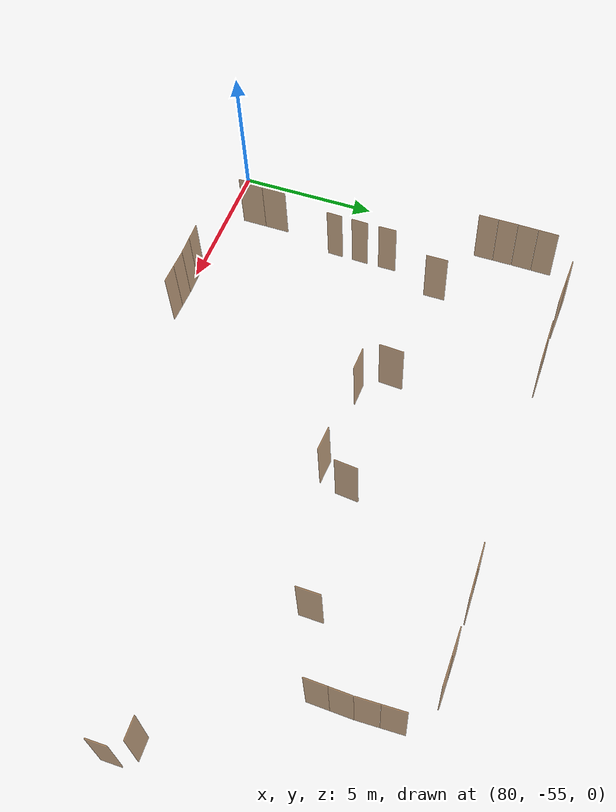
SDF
<sdf version="1.7">
 <world name="sim_world">
  <model name="door_25">
   <pose>82.69628751742377 -42.04046405408661 0.0 0 0 3.111119810310376</pose>
   <link name="right">
    <pose>0.454529137180095 0 1.11 0 0 0</pose>
    <visual name="right_visual">
     <geometry><box><size>0.89905827436019 0.03 2.2</size></box></geometry>
     <material>
      <ambient>0.5 0.25 0 0.6</ambient>
      <diffuse>0.5 0.25 0 0.6</diffuse>
      <pbr><metal><metalness>0.0</metalness></metal></pbr>
     </material>
    </visual>
    <collision name="right_collision">
     <geometry><box><size>0.89905827436019 0.03 2.2</size></box></geometry>
     <surface><contact><collide_bitmask>0x02</collide_bitmask></contact></surface>
    </collision>
    <inertial>
     <mass>50.0</mass>
     <inertia><ixx>20.17041666666667</ixx><iyy>23.53460741956468</iyy><izz>3.3716907528980116</izz></inertia>
    </inertial>
   </link>
   <joint name="right_joint" type="revolute">
    <parent>world</parent>
    <child>right</child>
    <axis><xyz>0 0 1</xyz><limit><lower>0</lower><upper>1.57</upper></limit></axis>
    <pose>0.454529137180095 0 0 0 0 0</pose>
   </joint>
   <link name="left">
    <pose>-0.454529137180095 0 1.11 0 0 0</pose>
    <visual name="left_visual">
     <geometry><box><size>0.89905827436019 0.03 2.2</size></box></geometry>
     <material>
      <ambient>0.5 0.25 0 0.6</ambient>
      <diffuse>0.5 0.25 0 0.6</diffuse>
      <pbr><metal><metalness>0.0</metalness></metal></pbr>
     </material>
    </visual>
    <collision name="left_collision">
     <geometry><box><size>0.89905827436019 0.03 2.2</size></box></geometry>
     <surface><contact><collide_bitmask>0x02</collide_bitmask></contact></surface>
    </collision>
    <inertial>
     <mass>50.0</mass>
     <inertia><ixx>20.17041666666667</ixx><iyy>23.53460741956468</iyy><izz>3.3716907528980116</izz></inertia>
    </inertial>
   </link>
   <joint name="left_joint" type="revolute">
    <parent>world</parent>
    <child>left</child>
    <axis><xyz>0 0 1</xyz><limit><lower>-1.57</lower><upper>0</upper></limit></axis>
    <pose>-0.454529137180095 0 0 0 0 0</pose>
   </joint>
   <plugin name="register_component" filename="libregister_component.so">
    <component name="Door">
     <v_max_door>0.5</v_max_door>
     <a_max_door>0.3</a_max_door>
     <a_nom_door>0.15</a_nom_door>
     <dx_min_door>0.01</dx_min_door>
     <f_max_door>500.0</f_max_door>
     <ros_interface>true</ros_interface>
     <door name="door_25" type="DoubleSwingDoor" left_joint_name="left_joint" right_joint_name="right_joint"/>
    </component>
   </plugin>
  </model>
  <model name="door_26">
   <pose>85.31989585524 -42.06122954578116 0.0 0 0 -3.133624763288185</pose>
   <link name="right">
    <pose>0.434988727263796 0 1.11 0 0 0</pose>
    <visual name="right_visual">
     <geometry><box><size>0.859977454527592 0.03 2.2</size></box></geometry>
     <material>
      <ambient>0.5 0.25 0 0.6</ambient>
      <diffuse>0.5 0.25 0 0.6</diffuse>
      <pbr><metal><metalness>0.0</metalness></metal></pbr>
     </material>
    </visual>
    <collision name="right_collision">
     <geometry><box><size>0.859977454527592 0.03 2.2</size></box></geometry>
     <surface><contact><collide_bitmask>0x02</collide_bitmask></contact></surface>
    </collision>
    <inertial>
     <mass>50.0</mass>
     <inertia><ixx>20.17041666666667</ixx><iyy>23.248171759565654</iyy><izz>3.085255092898986</izz></inertia>
    </inertial>
   </link>
   <joint name="right_joint" type="revolute">
    <parent>world</parent>
    <child>right</child>
    <axis><xyz>0 0 1</xyz><limit><lower>0</lower><upper>1.57</upper></limit></axis>
    <pose>0.434988727263796 0 0 0 0 0</pose>
   </joint>
   <link name="left">
    <pose>-0.434988727263796 0 1.11 0 0 0</pose>
    <visual name="left_visual">
     <geometry><box><size>0.859977454527592 0.03 2.2</size></box></geometry>
     <material>
      <ambient>0.5 0.25 0 0.6</ambient>
      <diffuse>0.5 0.25 0 0.6</diffuse>
      <pbr><metal><metalness>0.0</metalness></metal></pbr>
     </material>
    </visual>
    <collision name="left_collision">
     <geometry><box><size>0.859977454527592 0.03 2.2</size></box></geometry>
     <surface><contact><collide_bitmask>0x02</collide_bitmask></contact></surface>
    </collision>
    <inertial>
     <mass>50.0</mass>
     <inertia><ixx>20.17041666666667</ixx><iyy>23.248171759565654</iyy><izz>3.085255092898986</izz></inertia>
    </inertial>
   </link>
   <joint name="left_joint" type="revolute">
    <parent>world</parent>
    <child>left</child>
    <axis><xyz>0 0 1</xyz><limit><lower>-1.57</lower><upper>0</upper></limit></axis>
    <pose>-0.434988727263796 0 0 0 0 0</pose>
   </joint>
   <plugin name="register_component" filename="libregister_component.so">
    <component name="Door">
     <v_max_door>0.5</v_max_door>
     <a_max_door>0.3</a_max_door>
     <a_nom_door>0.15</a_nom_door>
     <dx_min_door>0.01</dx_min_door>
     <f_max_door>500.0</f_max_door>
     <ros_interface>true</ros_interface>
     <door name="door_26" type="DoubleSwingDoor" left_joint_name="left_joint" right_joint_name="right_joint"/>
    </component>
   </plugin>
  </model>
  <model name="door_27">
   <pose>83.16585412269237 -46.47424836147993 0.0 0 0 1.579183721070813</pose>
   <link name="right">
    <pose>0 0 1.11 0 0 0</pose>
    <visual name="right_visual">
     <geometry><box><size>0.7718400283955722 0.03 2.2</size></box></geometry>
     <material>
      <ambient>0.5 0.25 0 0.6</ambient>
      <diffuse>0.5 0.25 0 0.6</diffuse>
      <pbr><metal><metalness>0.0</metalness></metal></pbr>
     </material>
    </visual>
    <collision name="right_collision">
     <geometry><box><size>0.7718400283955722 0.03 2.2</size></box></geometry>
     <surface><contact><collide_bitmask>0x02</collide_bitmask></contact></surface>
    </collision>
    <inertial>
     <mass>50.0</mass>
     <inertia><ixx>20.17041666666667</ixx><iyy>22.648904289306994</iyy><izz>2.485987622640324</izz></inertia>
    </inertial>
   </link>
   <joint name="right_joint" type="revolute">
    <parent>world</parent>
    <child>right</child>
    <axis><xyz>0 0 -1</xyz><limit><lower>0</lower><upper>1.57</upper></limit></axis>
    <pose>0.3909200141977861 0 0 0 0 0</pose>
   </joint>
   <plugin name="register_component" filename="libregister_component.so">
    <component name="Door">
     <v_max_door>0.5</v_max_door>
     <a_max_door>0.3</a_max_door>
     <a_nom_door>0.15</a_nom_door>
     <dx_min_door>0.01</dx_min_door>
     <f_max_door>500.0</f_max_door>
     <ros_interface>true</ros_interface>
     <door name="door_27" type="SwingDoor" left_joint_name="empty_joint" right_joint_name="right_joint"/>
    </component>
   </plugin>
  </model>
  <model name="door_28">
   <pose>82.45559046625354 -48.50504458023561 0.0 0 0 1.5766608247601794</pose>
   <link name="right">
    <pose>0 0 1.11 0 0 0</pose>
    <visual name="right_visual">
     <geometry><box><size>0.6435478235257738 0.03 2.2</size></box></geometry>
     <material>
      <ambient>0.5 0.25 0 0.6</ambient>
      <diffuse>0.5 0.25 0 0.6</diffuse>
      <pbr><metal><metalness>0.0</metalness></metal></pbr>
     </material>
    </visual>
    <collision name="right_collision">
     <geometry><box><size>0.6435478235257738 0.03 2.2</size></box></geometry>
     <surface><contact><collide_bitmask>0x02</collide_bitmask></contact></surface>
    </collision>
    <inertial>
     <mass>50.0</mass>
     <inertia><ixx>20.17041666666667</ixx><iyy>21.89230750485317</iyy><izz>1.7293908381865022</izz></inertia>
    </inertial>
   </link>
   <joint name="right_joint" type="revolute">
    <parent>world</parent>
    <child>right</child>
    <axis><xyz>0 0 -1</xyz><limit><lower>0</lower><upper>1.57</upper></limit></axis>
    <pose>0.3267739117628869 0 0 0 0 0</pose>
   </joint>
   <plugin name="register_component" filename="libregister_component.so">
    <component name="Door">
     <v_max_door>0.5</v_max_door>
     <a_max_door>0.3</a_max_door>
     <a_nom_door>0.15</a_nom_door>
     <dx_min_door>0.01</dx_min_door>
     <f_max_door>500.0</f_max_door>
     <ros_interface>true</ros_interface>
     <door name="door_28" type="SwingDoor" left_joint_name="empty_joint" right_joint_name="right_joint"/>
    </component>
   </plugin>
  </model>
  <model name="door_29">
   <pose>82.45509640624928 -49.54529540497967 0.0 0 0 1.5469913006098186</pose>
   <link name="right">
    <pose>0 0 1.11 0 0 0</pose>
    <visual name="right_visual">
     <geometry><box><size>0.5975964660064585 0.03 2.2</size></box></geometry>
     <material>
      <ambient>0.5 0.25 0 0.6</ambient>
      <diffuse>0.5 0.25 0 0.6</diffuse>
      <pbr><metal><metalness>0.0</metalness></metal></pbr>
     </material>
    </visual>
    <collision name="right_collision">
     <geometry><box><size>0.5975964660064585 0.03 2.2</size></box></geometry>
     <surface><contact><collide_bitmask>0x02</collide_bitmask></contact></surface>
    </collision>
    <inertial>
     <mass>50.0</mass>
     <inertia><ixx>20.17041666666667</ixx><iyy>21.65467306743087</iyy><izz>1.4917564007642017</izz></inertia>
    </inertial>
   </link>
   <joint name="right_joint" type="revolute">
    <parent>world</parent>
    <child>right</child>
    <axis><xyz>0 0 -1</xyz><limit><lower>0</lower><upper>1.57</upper></limit></axis>
    <pose>0.3037982330032293 0 0 0 0 0</pose>
   </joint>
   <plugin name="register_component" filename="libregister_component.so">
    <component name="Door">
     <v_max_door>0.5</v_max_door>
     <a_max_door>0.3</a_max_door>
     <a_nom_door>0.15</a_nom_door>
     <dx_min_door>0.01</dx_min_door>
     <f_max_door>500.0</f_max_door>
     <ros_interface>true</ros_interface>
     <door name="door_29" type="SwingDoor" left_joint_name="empty_joint" right_joint_name="right_joint"/>
    </component>
   </plugin>
  </model>
  <model name="door_30">
   <pose>82.44063392248796 -50.504640161146 0.0 0 0 1.5458015331759682</pose>
   <link name="right">
    <pose>0 0 1.11 0 0 0</pose>
    <visual name="right_visual">
     <geometry><box><size>0.5686801032608714 0.03 2.2</size></box></geometry>
     <material>
      <ambient>0.5 0.25 0 0.6</ambient>
      <diffuse>0.5 0.25 0 0.6</diffuse>
      <pbr><metal><metalness>0.0</metalness></metal></pbr>
     </material>
    </visual>
    <collision name="right_collision">
     <geometry><box><size>0.5686801032608714 0.03 2.2</size></box></geometry>
     <surface><contact><collide_bitmask>0x02</collide_bitmask></contact></surface>
    </collision>
    <inertial>
     <mass>50.0</mass>
     <inertia><ixx>20.17041666666667</ixx><iyy>21.514154416019988</iyy><izz>1.351237749353314</izz></inertia>
    </inertial>
   </link>
   <joint name="right_joint" type="revolute">
    <parent>world</parent>
    <child>right</child>
    <axis><xyz>0 0 -1</xyz><limit><lower>0</lower><upper>1.57</upper></limit></axis>
    <pose>0.2893400516304357 0 0 0 0 0</pose>
   </joint>
   <plugin name="register_component" filename="libregister_component.so">
    <component name="Door">
     <v_max_door>0.5</v_max_door>
     <a_max_door>0.3</a_max_door>
     <a_nom_door>0.15</a_nom_door>
     <dx_min_door>0.01</dx_min_door>
     <f_max_door>500.0</f_max_door>
     <ros_interface>true</ros_interface>
     <door name="door_30" type="SwingDoor" left_joint_name="empty_joint" right_joint_name="right_joint"/>
    </component>
   </plugin>
  </model>
  <model name="door_31">
   <pose>87.27755622184876 -46.778694124716026 0.0 0 0 1.526038107638611</pose>
   <link name="right">
    <pose>0 0 1.11 0 0 0</pose>
    <visual name="right_visual">
     <geometry><box><size>0.8465997395450137 0.03 2.2</size></box></geometry>
     <material>
      <ambient>0.5 0.25 0 0.6</ambient>
      <diffuse>0.5 0.25 0 0.6</diffuse>
      <pbr><metal><metalness>0.0</metalness></metal></pbr>
     </material>
    </visual>
    <collision name="right_collision">
     <geometry><box><size>0.8465997395450137 0.03 2.2</size></box></geometry>
     <surface><contact><collide_bitmask>0x02</collide_bitmask></contact></surface>
    </collision>
    <inertial>
     <mass>50.0</mass>
     <inertia><ixx>20.17041666666667</ixx><iyy>23.153046329157025</iyy><izz>2.990129662490354</izz></inertia>
    </inertial>
   </link>
   <joint name="right_joint" type="revolute">
    <parent>world</parent>
    <child>right</child>
    <axis><xyz>0 0 -1</xyz><limit><lower>0</lower><upper>1.57</upper></limit></axis>
    <pose>0.42829986977250684 0 0 0 0 0</pose>
   </joint>
   <plugin name="register_component" filename="libregister_component.so">
    <component name="Door">
     <v_max_door>0.5</v_max_door>
     <a_max_door>0.3</a_max_door>
     <a_nom_door>0.15</a_nom_door>
     <dx_min_door>0.01</dx_min_door>
     <f_max_door>500.0</f_max_door>
     <ros_interface>true</ros_interface>
     <door name="door_31" type="SwingDoor" left_joint_name="empty_joint" right_joint_name="right_joint"/>
    </component>
   </plugin>
  </model>
  <model name="door_32">
   <pose>87.99562003774889 -47.67156535303539 0.0 0 0 3.10969850564186</pose>
   <link name="right">
    <pose>0 0 1.11 0 0 0</pose>
    <visual name="right_visual">
     <geometry><box><size>0.8247571403697955 0.03 2.2</size></box></geometry>
     <material>
      <ambient>0.5 0.25 0 0.6</ambient>
      <diffuse>0.5 0.25 0 0.6</diffuse>
      <pbr><metal><metalness>0.0</metalness></metal></pbr>
     </material>
    </visual>
    <collision name="right_collision">
     <geometry><box><size>0.8247571403697955 0.03 2.2</size></box></geometry>
     <surface><contact><collide_bitmask>0x02</collide_bitmask></contact></surface>
    </collision>
    <inertial>
     <mass>50.0</mass>
     <inertia><ixx>20.17041666666667</ixx><iyy>23.00093475246235</iyy><izz>2.8380180857956776</izz></inertia>
    </inertial>
   </link>
   <joint name="right_joint" type="revolute">
    <parent>world</parent>
    <child>right</child>
    <axis><xyz>0 0 -1</xyz><limit><lower>0</lower><upper>1.57</upper></limit></axis>
    <pose>0.41737857018489777 0 0 0 0 0</pose>
   </joint>
   <plugin name="register_component" filename="libregister_component.so">
    <component name="Door">
     <v_max_door>0.5</v_max_door>
     <a_max_door>0.3</a_max_door>
     <a_nom_door>0.15</a_nom_door>
     <dx_min_door>0.01</dx_min_door>
     <f_max_door>500.0</f_max_door>
     <ros_interface>true</ros_interface>
     <door name="door_32" type="SwingDoor" left_joint_name="empty_joint" right_joint_name="right_joint"/>
    </component>
   </plugin>
  </model>
  <model name="door_33">
   <pose>91.15185500319669 -47.72371114075859 0.0 0 0 3.082567539850427</pose>
   <link name="right">
    <pose>0 0 1.11 0 0 0</pose>
    <visual name="right_visual">
     <geometry><box><size>0.851883990732825 0.03 2.2</size></box></geometry>
     <material>
      <ambient>0.5 0.25 0 0.6</ambient>
      <diffuse>0.5 0.25 0 0.6</diffuse>
      <pbr><metal><metalness>0.0</metalness></metal></pbr>
     </material>
    </visual>
    <collision name="right_collision">
     <geometry><box><size>0.851883990732825 0.03 2.2</size></box></geometry>
     <surface><contact><collide_bitmask>0x02</collide_bitmask></contact></surface>
    </collision>
    <inertial>
     <mass>50.0</mass>
     <inertia><ixx>20.17041666666667</ixx><iyy>23.190443056945355</iyy><izz>3.0275263902786826</izz></inertia>
    </inertial>
   </link>
   <joint name="right_joint" type="revolute">
    <parent>world</parent>
    <child>right</child>
    <axis><xyz>0 0 1</xyz><limit><lower>0</lower><upper>1.57</upper></limit></axis>
    <pose>0.4309419953664125 0 0 0 0 0</pose>
   </joint>
   <plugin name="register_component" filename="libregister_component.so">
    <component name="Door">
     <v_max_door>0.5</v_max_door>
     <a_max_door>0.3</a_max_door>
     <a_nom_door>0.15</a_nom_door>
     <dx_min_door>0.01</dx_min_door>
     <f_max_door>500.0</f_max_door>
     <ros_interface>true</ros_interface>
     <door name="door_33" type="SwingDoor" left_joint_name="empty_joint" right_joint_name="right_joint"/>
    </component>
   </plugin>
  </model>
  <model name="door_34">
   <pose>91.79226156933505 -46.7601893318289 0.0 0 0 1.48680471553292</pose>
   <link name="right">
    <pose>0 0 1.11 0 0 0</pose>
    <visual name="right_visual">
     <geometry><box><size>0.7941402138221323 0.03 2.2</size></box></geometry>
     <material>
      <ambient>0.5 0.25 0 0.6</ambient>
      <diffuse>0.5 0.25 0 0.6</diffuse>
      <pbr><metal><metalness>0.0</metalness></metal></pbr>
     </material>
    </visual>
    <collision name="right_collision">
     <geometry><box><size>0.7941402138221323 0.03 2.2</size></box></geometry>
     <surface><contact><collide_bitmask>0x02</collide_bitmask></contact></surface>
    </collision>
    <inertial>
     <mass>50.0</mass>
     <inertia><ixx>20.17041666666667</ixx><iyy>22.79441116337276</iyy><izz>2.631494496706092</izz></inertia>
    </inertial>
   </link>
   <joint name="right_joint" type="revolute">
    <parent>world</parent>
    <child>right</child>
    <axis><xyz>0 0 1</xyz><limit><lower>0</lower><upper>1.57</upper></limit></axis>
    <pose>0.40207010691106615 0 0 0 0 0</pose>
   </joint>
   <plugin name="register_component" filename="libregister_component.so">
    <component name="Door">
     <v_max_door>0.5</v_max_door>
     <a_max_door>0.3</a_max_door>
     <a_nom_door>0.15</a_nom_door>
     <dx_min_door>0.01</dx_min_door>
     <f_max_door>500.0</f_max_door>
     <ros_interface>true</ros_interface>
     <door name="door_34" type="SwingDoor" left_joint_name="empty_joint" right_joint_name="right_joint"/>
    </component>
   </plugin>
  </model>
  <model name="door_35">
   <pose>81.97573842998699 -53.46658977279419 0.0 0 0 1.570311044281413</pose>
   <link name="right">
    <pose>0.4473414435084285 0 1.11 0 0 0</pose>
    <visual name="right_visual">
     <geometry><box><size>0.884682887016857 0.03 2.2</size></box></geometry>
     <material>
      <ambient>0.5 0.25 0 0.6</ambient>
      <diffuse>0.5 0.25 0 0.6</diffuse>
      <pbr><metal><metalness>0.0</metalness></metal></pbr>
     </material>
    </visual>
    <collision name="right_collision">
     <geometry><box><size>0.884682887016857 0.03 2.2</size></box></geometry>
     <surface><contact><collide_bitmask>0x02</collide_bitmask></contact></surface>
    </collision>
    <inertial>
     <mass>50.0</mass>
     <inertia><ixx>20.17041666666667</ixx><iyy>23.427765877418675</iyy><izz>3.2648492107520046</izz></inertia>
    </inertial>
   </link>
   <joint name="right_joint" type="revolute">
    <parent>world</parent>
    <child>right</child>
    <axis><xyz>0 0 1</xyz><limit><lower>0</lower><upper>1.57</upper></limit></axis>
    <pose>0.4473414435084285 0 0 0 0 0</pose>
   </joint>
   <link name="left">
    <pose>-0.4473414435084285 0 1.11 0 0 0</pose>
    <visual name="left_visual">
     <geometry><box><size>0.884682887016857 0.03 2.2</size></box></geometry>
     <material>
      <ambient>0.5 0.25 0 0.6</ambient>
      <diffuse>0.5 0.25 0 0.6</diffuse>
      <pbr><metal><metalness>0.0</metalness></metal></pbr>
     </material>
    </visual>
    <collision name="left_collision">
     <geometry><box><size>0.884682887016857 0.03 2.2</size></box></geometry>
     <surface><contact><collide_bitmask>0x02</collide_bitmask></contact></surface>
    </collision>
    <inertial>
     <mass>50.0</mass>
     <inertia><ixx>20.17041666666667</ixx><iyy>23.427765877418675</iyy><izz>3.2648492107520046</izz></inertia>
    </inertial>
   </link>
   <joint name="left_joint" type="revolute">
    <parent>world</parent>
    <child>left</child>
    <axis><xyz>0 0 1</xyz><limit><lower>-1.57</lower><upper>0</upper></limit></axis>
    <pose>-0.4473414435084285 0 0 0 0 0</pose>
   </joint>
   <plugin name="register_component" filename="libregister_component.so">
    <component name="Door">
     <v_max_door>0.5</v_max_door>
     <a_max_door>0.3</a_max_door>
     <a_nom_door>0.15</a_nom_door>
     <dx_min_door>0.01</dx_min_door>
     <f_max_door>500.0</f_max_door>
     <ros_interface>true</ros_interface>
     <door name="door_35" type="DoubleSwingDoor" left_joint_name="left_joint" right_joint_name="right_joint"/>
    </component>
   </plugin>
  </model>
  <model name="door_36">
   <pose>85.16211105569514 -54.913841240448164 0.0 0 0 -3.1096963955326804</pose>
   <link name="right">
    <pose>0.32627550343969536 0 1.11 0 0 0</pose>
    <visual name="right_visual">
     <geometry><box><size>0.6425510068793907 0.03 2.2</size></box></geometry>
     <material>
      <ambient>0.5 0.25 0 0.6</ambient>
      <diffuse>0.5 0.25 0 0.6</diffuse>
      <pbr><metal><metalness>0.0</metalness></metal></pbr>
     </material>
    </visual>
    <collision name="right_collision">
     <geometry><box><size>0.6425510068793907 0.03 2.2</size></box></geometry>
     <surface><contact><collide_bitmask>0x02</collide_bitmask></contact></surface>
    </collision>
    <inertial>
     <mass>50.0</mass>
     <inertia><ixx>20.17041666666667</ixx><iyy>21.886965818507168</iyy><izz>1.724049151840495</izz></inertia>
    </inertial>
   </link>
   <joint name="right_joint" type="revolute">
    <parent>world</parent>
    <child>right</child>
    <axis><xyz>0 0 -1</xyz><limit><lower>0</lower><upper>1.57</upper></limit></axis>
    <pose>0.32627550343969536 0 0 0 0 0</pose>
   </joint>
   <link name="left">
    <pose>-0.32627550343969536 0 1.11 0 0 0</pose>
    <visual name="left_visual">
     <geometry><box><size>0.6425510068793907 0.03 2.2</size></box></geometry>
     <material>
      <ambient>0.5 0.25 0 0.6</ambient>
      <diffuse>0.5 0.25 0 0.6</diffuse>
      <pbr><metal><metalness>0.0</metalness></metal></pbr>
     </material>
    </visual>
    <collision name="left_collision">
     <geometry><box><size>0.6425510068793907 0.03 2.2</size></box></geometry>
     <surface><contact><collide_bitmask>0x02</collide_bitmask></contact></surface>
    </collision>
    <inertial>
     <mass>50.0</mass>
     <inertia><ixx>20.17041666666667</ixx><iyy>21.886965818507168</iyy><izz>1.724049151840495</izz></inertia>
    </inertial>
   </link>
   <joint name="left_joint" type="revolute">
    <parent>world</parent>
    <child>left</child>
    <axis><xyz>0 0 -1</xyz><limit><lower>-1.57</lower><upper>0</upper></limit></axis>
    <pose>-0.32627550343969536 0 0 0 0 0</pose>
   </joint>
   <plugin name="register_component" filename="libregister_component.so">
    <component name="Door">
     <v_max_door>0.5</v_max_door>
     <a_max_door>0.3</a_max_door>
     <a_nom_door>0.15</a_nom_door>
     <dx_min_door>0.01</dx_min_door>
     <f_max_door>500.0</f_max_door>
     <ros_interface>true</ros_interface>
     <door name="door_36" type="DoubleSwingDoor" left_joint_name="left_joint" right_joint_name="right_joint"/>
    </component>
   </plugin>
  </model>
  <model name="door_37">
   <pose>86.47065143427203 -54.9089605264666 0.0 0 0 3.1173262376227773</pose>
   <link name="right">
    <pose>0.3282572873181186 0 1.11 0 0 0</pose>
    <visual name="right_visual">
     <geometry><box><size>0.6465145746362372 0.03 2.2</size></box></geometry>
     <material>
      <ambient>0.5 0.25 0 0.6</ambient>
      <diffuse>0.5 0.25 0 0.6</diffuse>
      <pbr><metal><metalness>0.0</metalness></metal></pbr>
     </material>
    </visual>
    <collision name="right_collision">
     <geometry><box><size>0.6465145746362372 0.03 2.2</size></box></geometry>
     <surface><contact><collide_bitmask>0x02</collide_bitmask></contact></surface>
    </collision>
    <inertial>
     <mass>50.0</mass>
     <inertia><ixx>20.17041666666667</ixx><iyy>21.90825456340448</iyy><izz>1.7453378967378115</izz></inertia>
    </inertial>
   </link>
   <joint name="right_joint" type="revolute">
    <parent>world</parent>
    <child>right</child>
    <axis><xyz>0 0 -1</xyz><limit><lower>0</lower><upper>1.57</upper></limit></axis>
    <pose>0.3282572873181186 0 0 0 0 0</pose>
   </joint>
   <link name="left">
    <pose>-0.3282572873181186 0 1.11 0 0 0</pose>
    <visual name="left_visual">
     <geometry><box><size>0.6465145746362372 0.03 2.2</size></box></geometry>
     <material>
      <ambient>0.5 0.25 0 0.6</ambient>
      <diffuse>0.5 0.25 0 0.6</diffuse>
      <pbr><metal><metalness>0.0</metalness></metal></pbr>
     </material>
    </visual>
    <collision name="left_collision">
     <geometry><box><size>0.6465145746362372 0.03 2.2</size></box></geometry>
     <surface><contact><collide_bitmask>0x02</collide_bitmask></contact></surface>
    </collision>
    <inertial>
     <mass>50.0</mass>
     <inertia><ixx>20.17041666666667</ixx><iyy>21.90825456340448</iyy><izz>1.7453378967378115</izz></inertia>
    </inertial>
   </link>
   <joint name="left_joint" type="revolute">
    <parent>world</parent>
    <child>left</child>
    <axis><xyz>0 0 -1</xyz><limit><lower>-1.57</lower><upper>0</upper></limit></axis>
    <pose>-0.3282572873181186 0 0 0 0 0</pose>
   </joint>
   <plugin name="register_component" filename="libregister_component.so">
    <component name="Door">
     <v_max_door>0.5</v_max_door>
     <a_max_door>0.3</a_max_door>
     <a_nom_door>0.15</a_nom_door>
     <dx_min_door>0.01</dx_min_door>
     <f_max_door>500.0</f_max_door>
     <ros_interface>true</ros_interface>
     <door name="door_37" type="DoubleSwingDoor" left_joint_name="left_joint" right_joint_name="right_joint"/>
    </component>
   </plugin>
  </model>
  <model name="door_58">
   <pose>101.66573635281146 -50.18775306871152 0.0 0 0 1.5824009636919187</pose>
   <link name="right">
    <pose>0 0 1.11 0 0 0</pose>
    <visual name="right_visual">
     <geometry><box><size>0.6634641037201902 0.03 2.2</size></box></geometry>
     <material>
      <ambient>0.5 0.25 0 0.6</ambient>
      <diffuse>0.5 0.25 0 0.6</diffuse>
      <pbr><metal><metalness>0.0</metalness></metal></pbr>
     </material>
    </visual>
    <collision name="right_collision">
     <geometry><box><size>0.6634641037201902 0.03 2.2</size></box></geometry>
     <surface><contact><collide_bitmask>0x02</collide_bitmask></contact></surface>
    </collision>
    <inertial>
     <mass>50.0</mass>
     <inertia><ixx>20.17041666666667</ixx><iyy>22.000769237188486</iyy><izz>1.8378525705218138</izz></inertia>
    </inertial>
   </link>
   <joint name="right_joint" type="revolute">
    <parent>world</parent>
    <child>right</child>
    <axis><xyz>0 0 -1</xyz><limit><lower>0</lower><upper>1.57</upper></limit></axis>
    <pose>0.3367320518600951 0 0 0 0 0</pose>
   </joint>
   <plugin name="register_component" filename="libregister_component.so">
    <component name="Door">
     <v_max_door>0.5</v_max_door>
     <a_max_door>0.3</a_max_door>
     <a_nom_door>0.15</a_nom_door>
     <dx_min_door>0.01</dx_min_door>
     <f_max_door>500.0</f_max_door>
     <ros_interface>true</ros_interface>
     <door name="door_58" type="SwingDoor" left_joint_name="empty_joint" right_joint_name="right_joint"/>
    </component>
   </plugin>
  </model>
  <model name="door_59">
   <pose>101.04423881047279 -49.518586221718635 0.0 0 0 -3.113103508577478</pose>
   <link name="right">
    <pose>0 0 1.11 0 0 0</pose>
    <visual name="right_visual">
     <geometry><box><size>0.690082652568289 0.03 2.2</size></box></geometry>
     <material>
      <ambient>0.5 0.25 0 0.6</ambient>
      <diffuse>0.5 0.25 0 0.6</diffuse>
      <pbr><metal><metalness>0.0</metalness></metal></pbr>
     </material>
    </visual>
    <collision name="right_collision">
     <geometry><box><size>0.690082652568289 0.03 2.2</size></box></geometry>
     <surface><contact><collide_bitmask>0x02</collide_bitmask></contact></surface>
    </collision>
    <inertial>
     <mass>50.0</mass>
     <inertia><ixx>20.17041666666667</ixx><iyy>22.150891947398698</iyy><izz>1.987975280732025</izz></inertia>
    </inertial>
   </link>
   <joint name="right_joint" type="revolute">
    <parent>world</parent>
    <child>right</child>
    <axis><xyz>0 0 -1</xyz><limit><lower>0</lower><upper>1.57</upper></limit></axis>
    <pose>0.3500413262841445 0 0 0 0 0</pose>
   </joint>
   <plugin name="register_component" filename="libregister_component.so">
    <component name="Door">
     <v_max_door>0.5</v_max_door>
     <a_max_door>0.3</a_max_door>
     <a_nom_door>0.15</a_nom_door>
     <dx_min_door>0.01</dx_min_door>
     <f_max_door>500.0</f_max_door>
     <ros_interface>true</ros_interface>
     <door name="door_59" type="SwingDoor" left_joint_name="empty_joint" right_joint_name="right_joint"/>
    </component>
   </plugin>
  </model>
  <model name="door_60">
   <pose>95.95100416950386 -46.422746348913805 0.0 0 0 1.5626879979330706</pose>
   <link name="right">
    <pose>0 0 1.11 0 0 0</pose>
    <visual name="right_visual">
     <geometry><box><size>0.8024410120196654 0.03 2.2</size></box></geometry>
     <material>
      <ambient>0.5 0.25 0 0.6</ambient>
      <diffuse>0.5 0.25 0 0.6</diffuse>
      <pbr><metal><metalness>0.0</metalness></metal></pbr>
     </material>
    </visual>
    <collision name="right_collision">
     <geometry><box><size>0.8024410120196654 0.03 2.2</size></box></geometry>
     <surface><contact><collide_bitmask>0x02</collide_bitmask></contact></surface>
    </collision>
    <inertial>
     <mass>50.0</mass>
     <inertia><ixx>20.17041666666667</ixx><iyy>22.84963157404644</iyy><izz>2.6867149073797703</izz></inertia>
    </inertial>
   </link>
   <joint name="right_joint" type="revolute">
    <parent>world</parent>
    <child>right</child>
    <axis><xyz>0 0 1</xyz><limit><lower>0</lower><upper>1.57</upper></limit></axis>
    <pose>0.4062205060098327 0 0 0 0 0</pose>
   </joint>
   <plugin name="register_component" filename="libregister_component.so">
    <component name="Door">
     <v_max_door>0.5</v_max_door>
     <a_max_door>0.3</a_max_door>
     <a_nom_door>0.15</a_nom_door>
     <dx_min_door>0.01</dx_min_door>
     <f_max_door>500.0</f_max_door>
     <ros_interface>true</ros_interface>
     <door name="door_60" type="SwingDoor" left_joint_name="empty_joint" right_joint_name="right_joint"/>
    </component>
   </plugin>
  </model>
  <model name="door_62">
   <pose>93.76998376642013 -42.070227426464946 0.0 0 0 -3.1123079274170835</pose>
   <link name="right">
    <pose>0.4417742614112612 0 1.11 0 0 0</pose>
    <visual name="right_visual">
     <geometry><box><size>0.8735485228225224 0.03 2.2</size></box></geometry>
     <material>
      <ambient>0.5 0.25 0 0.6</ambient>
      <diffuse>0.5 0.25 0 0.6</diffuse>
      <pbr><metal><metalness>0.0</metalness></metal></pbr>
     </material>
    </visual>
    <collision name="right_collision">
     <geometry><box><size>0.8735485228225224 0.03 2.2</size></box></geometry>
     <surface><contact><collide_bitmask>0x02</collide_bitmask></contact></surface>
    </collision>
    <inertial>
     <mass>50.0</mass>
     <inertia><ixx>20.17041666666667</ixx><iyy>23.34619592385588</iyy><izz>3.1832792571892123</izz></inertia>
    </inertial>
   </link>
   <joint name="right_joint" type="revolute">
    <parent>world</parent>
    <child>right</child>
    <axis><xyz>0 0 1</xyz><limit><lower>0</lower><upper>1.57</upper></limit></axis>
    <pose>0.4417742614112612 0 0 0 0 0</pose>
   </joint>
   <link name="left">
    <pose>-0.4417742614112612 0 1.11 0 0 0</pose>
    <visual name="left_visual">
     <geometry><box><size>0.8735485228225224 0.03 2.2</size></box></geometry>
     <material>
      <ambient>0.5 0.25 0 0.6</ambient>
      <diffuse>0.5 0.25 0 0.6</diffuse>
      <pbr><metal><metalness>0.0</metalness></metal></pbr>
     </material>
    </visual>
    <collision name="left_collision">
     <geometry><box><size>0.8735485228225224 0.03 2.2</size></box></geometry>
     <surface><contact><collide_bitmask>0x02</collide_bitmask></contact></surface>
    </collision>
    <inertial>
     <mass>50.0</mass>
     <inertia><ixx>20.17041666666667</ixx><iyy>23.34619592385588</iyy><izz>3.1832792571892123</izz></inertia>
    </inertial>
   </link>
   <joint name="left_joint" type="revolute">
    <parent>world</parent>
    <child>left</child>
    <axis><xyz>0 0 1</xyz><limit><lower>-1.57</lower><upper>0</upper></limit></axis>
    <pose>-0.4417742614112612 0 0 0 0 0</pose>
   </joint>
   <plugin name="register_component" filename="libregister_component.so">
    <component name="Door">
     <v_max_door>0.5</v_max_door>
     <a_max_door>0.3</a_max_door>
     <a_nom_door>0.15</a_nom_door>
     <dx_min_door>0.01</dx_min_door>
     <f_max_door>500.0</f_max_door>
     <ros_interface>true</ros_interface>
     <door name="door_62" type="DoubleSwingDoor" left_joint_name="left_joint" right_joint_name="right_joint"/>
    </component>
   </plugin>
  </model>
  <model name="door_63">
   <pose>96.43525783126297 -42.04435664805963 0.0 0 0 3.141592653589793</pose>
   <link name="right">
    <pose>0.44226604715396434 0 1.11 0 0 0</pose>
    <visual name="right_visual">
     <geometry><box><size>0.8745320943079287 0.03 2.2</size></box></geometry>
     <material>
      <ambient>0.5 0.25 0 0.6</ambient>
      <diffuse>0.5 0.25 0 0.6</diffuse>
      <pbr><metal><metalness>0.0</metalness></metal></pbr>
     </material>
    </visual>
    <collision name="right_collision">
     <geometry><box><size>0.8745320943079287 0.03 2.2</size></box></geometry>
     <surface><contact><collide_bitmask>0x02</collide_bitmask></contact></surface>
    </collision>
    <inertial>
     <mass>50.0</mass>
     <inertia><ixx>20.17041666666667</ixx><iyy>23.353359933227555</iyy><izz>3.1904432665608833</izz></inertia>
    </inertial>
   </link>
   <joint name="right_joint" type="revolute">
    <parent>world</parent>
    <child>right</child>
    <axis><xyz>0 0 1</xyz><limit><lower>0</lower><upper>1.57</upper></limit></axis>
    <pose>0.44226604715396434 0 0 0 0 0</pose>
   </joint>
   <link name="left">
    <pose>-0.44226604715396434 0 1.11 0 0 0</pose>
    <visual name="left_visual">
     <geometry><box><size>0.8745320943079287 0.03 2.2</size></box></geometry>
     <material>
      <ambient>0.5 0.25 0 0.6</ambient>
      <diffuse>0.5 0.25 0 0.6</diffuse>
      <pbr><metal><metalness>0.0</metalness></metal></pbr>
     </material>
    </visual>
    <collision name="left_collision">
     <geometry><box><size>0.8745320943079287 0.03 2.2</size></box></geometry>
     <surface><contact><collide_bitmask>0x02</collide_bitmask></contact></surface>
    </collision>
    <inertial>
     <mass>50.0</mass>
     <inertia><ixx>20.17041666666667</ixx><iyy>23.353359933227555</iyy><izz>3.1904432665608833</izz></inertia>
    </inertial>
   </link>
   <joint name="left_joint" type="revolute">
    <parent>world</parent>
    <child>left</child>
    <axis><xyz>0 0 1</xyz><limit><lower>-1.57</lower><upper>0</upper></limit></axis>
    <pose>-0.44226604715396434 0 0 0 0 0</pose>
   </joint>
   <plugin name="register_component" filename="libregister_component.so">
    <component name="Door">
     <v_max_door>0.5</v_max_door>
     <a_max_door>0.3</a_max_door>
     <a_nom_door>0.15</a_nom_door>
     <dx_min_door>0.01</dx_min_door>
     <f_max_door>500.0</f_max_door>
     <ros_interface>true</ros_interface>
     <door name="door_63" type="DoubleSwingDoor" left_joint_name="left_joint" right_joint_name="right_joint"/>
    </component>
   </plugin>
  </model>
  <model name="door_64">
   <pose>80.79592313979487 -43.474929847690746 0.0 0 0 1.559499320434609</pose>
   <link name="right">
    <pose>0.3690938610088594 0 1.11 0 0 0</pose>
    <visual name="right_visual">
     <geometry><box><size>0.7281877220177188 0.03 2.2</size></box></geometry>
     <material>
      <ambient>0.5 0.25 0 0.6</ambient>
      <diffuse>0.5 0.25 0 0.6</diffuse>
      <pbr><metal><metalness>0.0</metalness></metal></pbr>
     </material>
    </visual>
    <collision name="right_collision">
     <geometry><box><size>0.7281877220177188 0.03 2.2</size></box></geometry>
     <surface><contact><collide_bitmask>0x02</collide_bitmask></contact></surface>
    </collision>
    <inertial>
     <mass>50.0</mass>
     <inertia><ixx>20.17041666666667</ixx><iyy>22.376072327072315</iyy><izz>2.213155660405644</izz></inertia>
    </inertial>
   </link>
   <joint name="right_joint" type="revolute">
    <parent>world</parent>
    <child>right</child>
    <axis><xyz>0 0 1</xyz><limit><lower>0</lower><upper>1.57</upper></limit></axis>
    <pose>0.3690938610088594 0 0 0 0 0</pose>
   </joint>
   <link name="left">
    <pose>-0.3690938610088594 0 1.11 0 0 0</pose>
    <visual name="left_visual">
     <geometry><box><size>0.7281877220177188 0.03 2.2</size></box></geometry>
     <material>
      <ambient>0.5 0.25 0 0.6</ambient>
      <diffuse>0.5 0.25 0 0.6</diffuse>
      <pbr><metal><metalness>0.0</metalness></metal></pbr>
     </material>
    </visual>
    <collision name="left_collision">
     <geometry><box><size>0.7281877220177188 0.03 2.2</size></box></geometry>
     <surface><contact><collide_bitmask>0x02</collide_bitmask></contact></surface>
    </collision>
    <inertial>
     <mass>50.0</mass>
     <inertia><ixx>20.17041666666667</ixx><iyy>22.376072327072315</iyy><izz>2.213155660405644</izz></inertia>
    </inertial>
   </link>
   <joint name="left_joint" type="revolute">
    <parent>world</parent>
    <child>left</child>
    <axis><xyz>0 0 1</xyz><limit><lower>-1.57</lower><upper>0</upper></limit></axis>
    <pose>-0.3690938610088594 0 0 0 0 0</pose>
   </joint>
   <plugin name="register_component" filename="libregister_component.so">
    <component name="Door">
     <v_max_door>0.5</v_max_door>
     <a_max_door>0.3</a_max_door>
     <a_nom_door>0.15</a_nom_door>
     <dx_min_door>0.01</dx_min_door>
     <f_max_door>500.0</f_max_door>
     <ros_interface>true</ros_interface>
     <door name="door_64" type="DoubleSwingDoor" left_joint_name="left_joint" right_joint_name="right_joint"/>
    </component>
   </plugin>
  </model>
  <model name="door_65">
   <pose>80.7905783088396 -44.924022811724264 0.0 0 0 1.575007980878398</pose>
   <link name="right">
    <pose>0.3554793258177064 0 1.11 0 0 0</pose>
    <visual name="right_visual">
     <geometry><box><size>0.7009586516354128 0.03 2.2</size></box></geometry>
     <material>
      <ambient>0.5 0.25 0 0.6</ambient>
      <diffuse>0.5 0.25 0 0.6</diffuse>
      <pbr><metal><metalness>0.0</metalness></metal></pbr>
     </material>
    </visual>
    <collision name="right_collision">
     <geometry><box><size>0.7009586516354128 0.03 2.2</size></box></geometry>
     <surface><contact><collide_bitmask>0x02</collide_bitmask></contact></surface>
    </collision>
    <inertial>
     <mass>50.0</mass>
     <inertia><ixx>20.17041666666667</ixx><iyy>22.213929297093905</iyy><izz>2.0510126304272336</izz></inertia>
    </inertial>
   </link>
   <joint name="right_joint" type="revolute">
    <parent>world</parent>
    <child>right</child>
    <axis><xyz>0 0 1</xyz><limit><lower>0</lower><upper>1.57</upper></limit></axis>
    <pose>0.3554793258177064 0 0 0 0 0</pose>
   </joint>
   <link name="left">
    <pose>-0.3554793258177064 0 1.11 0 0 0</pose>
    <visual name="left_visual">
     <geometry><box><size>0.7009586516354128 0.03 2.2</size></box></geometry>
     <material>
      <ambient>0.5 0.25 0 0.6</ambient>
      <diffuse>0.5 0.25 0 0.6</diffuse>
      <pbr><metal><metalness>0.0</metalness></metal></pbr>
     </material>
    </visual>
    <collision name="left_collision">
     <geometry><box><size>0.7009586516354128 0.03 2.2</size></box></geometry>
     <surface><contact><collide_bitmask>0x02</collide_bitmask></contact></surface>
    </collision>
    <inertial>
     <mass>50.0</mass>
     <inertia><ixx>20.17041666666667</ixx><iyy>22.213929297093905</iyy><izz>2.0510126304272336</izz></inertia>
    </inertial>
   </link>
   <joint name="left_joint" type="revolute">
    <parent>world</parent>
    <child>left</child>
    <axis><xyz>0 0 1</xyz><limit><lower>-1.57</lower><upper>0</upper></limit></axis>
    <pose>-0.3554793258177064 0 0 0 0 0</pose>
   </joint>
   <plugin name="register_component" filename="libregister_component.so">
    <component name="Door">
     <v_max_door>0.5</v_max_door>
     <a_max_door>0.3</a_max_door>
     <a_nom_door>0.15</a_nom_door>
     <dx_min_door>0.01</dx_min_door>
     <f_max_door>500.0</f_max_door>
     <ros_interface>true</ros_interface>
     <door name="door_65" type="DoubleSwingDoor" left_joint_name="left_joint" right_joint_name="right_joint"/>
    </component>
   </plugin>
  </model>
  <model name="door_66">
   <pose>98.31578495114476 -43.46459950214695 0.0 0 0 1.6074204472387623</pose>
   <link name="right">
    <pose>0.38271148538921596 0 1.11 0 0 0</pose>
    <visual name="right_visual">
     <geometry><box><size>0.7554229707784319 0.03 2.2</size></box></geometry>
     <material>
      <ambient>0.5 0.25 0 0.6</ambient>
      <diffuse>0.5 0.25 0 0.6</diffuse>
      <pbr><metal><metalness>0.0</metalness></metal></pbr>
     </material>
    </visual>
    <collision name="right_collision">
     <geometry><box><size>0.7554229707784319 0.03 2.2</size></box></geometry>
     <surface><contact><collide_bitmask>0x02</collide_bitmask></contact></surface>
    </collision>
    <inertial>
     <mass>50.0</mass>
     <inertia><ixx>20.17041666666667</ixx><iyy>22.54443276991547</iyy><izz>2.3815161032487984</izz></inertia>
    </inertial>
   </link>
   <joint name="right_joint" type="revolute">
    <parent>world</parent>
    <child>right</child>
    <axis><xyz>0 0 -1</xyz><limit><lower>0</lower><upper>1.57</upper></limit></axis>
    <pose>0.38271148538921596 0 0 0 0 0</pose>
   </joint>
   <link name="left">
    <pose>-0.38271148538921596 0 1.11 0 0 0</pose>
    <visual name="left_visual">
     <geometry><box><size>0.7554229707784319 0.03 2.2</size></box></geometry>
     <material>
      <ambient>0.5 0.25 0 0.6</ambient>
      <diffuse>0.5 0.25 0 0.6</diffuse>
      <pbr><metal><metalness>0.0</metalness></metal></pbr>
     </material>
    </visual>
    <collision name="left_collision">
     <geometry><box><size>0.7554229707784319 0.03 2.2</size></box></geometry>
     <surface><contact><collide_bitmask>0x02</collide_bitmask></contact></surface>
    </collision>
    <inertial>
     <mass>50.0</mass>
     <inertia><ixx>20.17041666666667</ixx><iyy>22.54443276991547</iyy><izz>2.3815161032487984</izz></inertia>
    </inertial>
   </link>
   <joint name="left_joint" type="revolute">
    <parent>world</parent>
    <child>left</child>
    <axis><xyz>0 0 -1</xyz><limit><lower>-1.57</lower><upper>0</upper></limit></axis>
    <pose>-0.38271148538921596 0 0 0 0 0</pose>
   </joint>
   <plugin name="register_component" filename="libregister_component.so">
    <component name="Door">
     <v_max_door>0.5</v_max_door>
     <a_max_door>0.3</a_max_door>
     <a_nom_door>0.15</a_nom_door>
     <dx_min_door>0.01</dx_min_door>
     <f_max_door>500.0</f_max_door>
     <ros_interface>true</ros_interface>
     <door name="door_66" type="DoubleSwingDoor" left_joint_name="left_joint" right_joint_name="right_joint"/>
    </component>
   </plugin>
  </model>
  <model name="door_67">
   <pose>98.32726810336517 -44.96733540543177 0.0 0 0 1.5483781035483983</pose>
   <link name="right">
    <pose>0.36900583102457674 0 1.11 0 0 0</pose>
    <visual name="right_visual">
     <geometry><box><size>0.7280116620491535 0.03 2.2</size></box></geometry>
     <material>
      <ambient>0.5 0.25 0 0.6</ambient>
      <diffuse>0.5 0.25 0 0.6</diffuse>
      <pbr><metal><metalness>0.0</metalness></metal></pbr>
     </material>
    </visual>
    <collision name="right_collision">
     <geometry><box><size>0.7280116620491535 0.03 2.2</size></box></geometry>
     <surface><contact><collide_bitmask>0x02</collide_bitmask></contact></surface>
    </collision>
    <inertial>
     <mass>50.0</mass>
     <inertia><ixx>20.17041666666667</ixx><iyy>22.375004083664884</iyy><izz>2.2120874169982123</izz></inertia>
    </inertial>
   </link>
   <joint name="right_joint" type="revolute">
    <parent>world</parent>
    <child>right</child>
    <axis><xyz>0 0 -1</xyz><limit><lower>0</lower><upper>1.57</upper></limit></axis>
    <pose>0.36900583102457674 0 0 0 0 0</pose>
   </joint>
   <link name="left">
    <pose>-0.36900583102457674 0 1.11 0 0 0</pose>
    <visual name="left_visual">
     <geometry><box><size>0.7280116620491535 0.03 2.2</size></box></geometry>
     <material>
      <ambient>0.5 0.25 0 0.6</ambient>
      <diffuse>0.5 0.25 0 0.6</diffuse>
      <pbr><metal><metalness>0.0</metalness></metal></pbr>
     </material>
    </visual>
    <collision name="left_collision">
     <geometry><box><size>0.7280116620491535 0.03 2.2</size></box></geometry>
     <surface><contact><collide_bitmask>0x02</collide_bitmask></contact></surface>
    </collision>
    <inertial>
     <mass>50.0</mass>
     <inertia><ixx>20.17041666666667</ixx><iyy>22.375004083664884</iyy><izz>2.2120874169982123</izz></inertia>
    </inertial>
   </link>
   <joint name="left_joint" type="revolute">
    <parent>world</parent>
    <child>left</child>
    <axis><xyz>0 0 -1</xyz><limit><lower>-1.57</lower><upper>0</upper></limit></axis>
    <pose>-0.36900583102457674 0 0 0 0 0</pose>
   </joint>
   <plugin name="register_component" filename="libregister_component.so">
    <component name="Door">
     <v_max_door>0.5</v_max_door>
     <a_max_door>0.3</a_max_door>
     <a_nom_door>0.15</a_nom_door>
     <dx_min_door>0.01</dx_min_door>
     <f_max_door>500.0</f_max_door>
     <ros_interface>true</ros_interface>
     <door name="door_67" type="DoubleSwingDoor" left_joint_name="left_joint" right_joint_name="right_joint"/>
    </component>
   </plugin>
  </model>
 </world>
</sdf>
